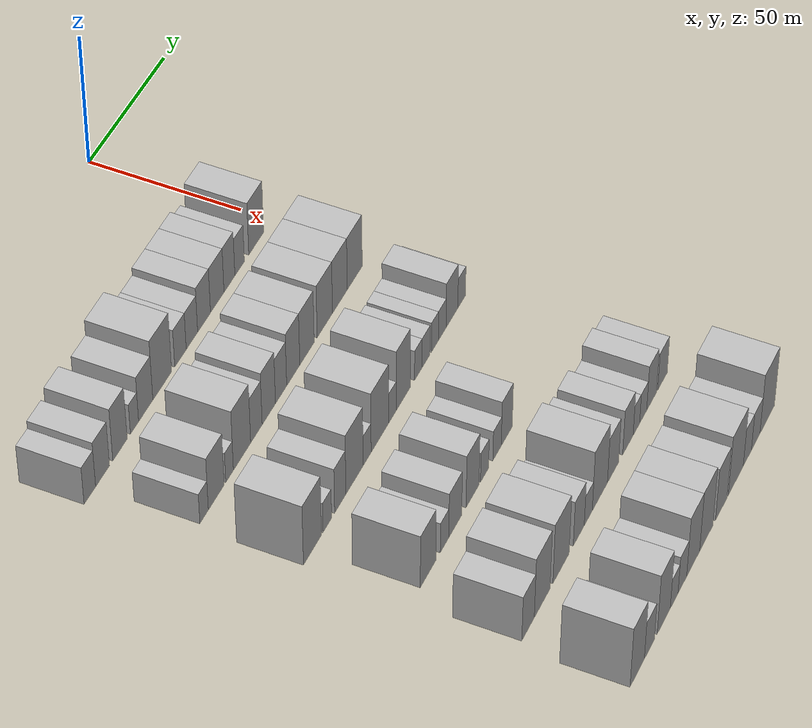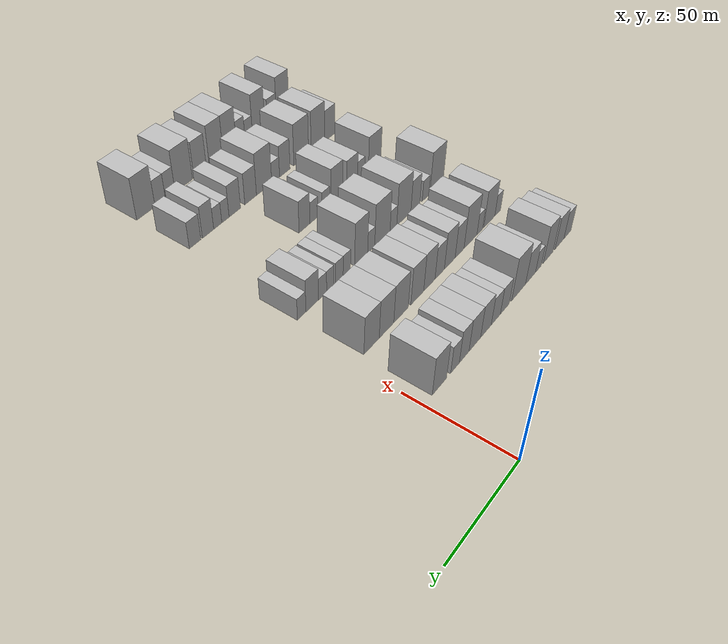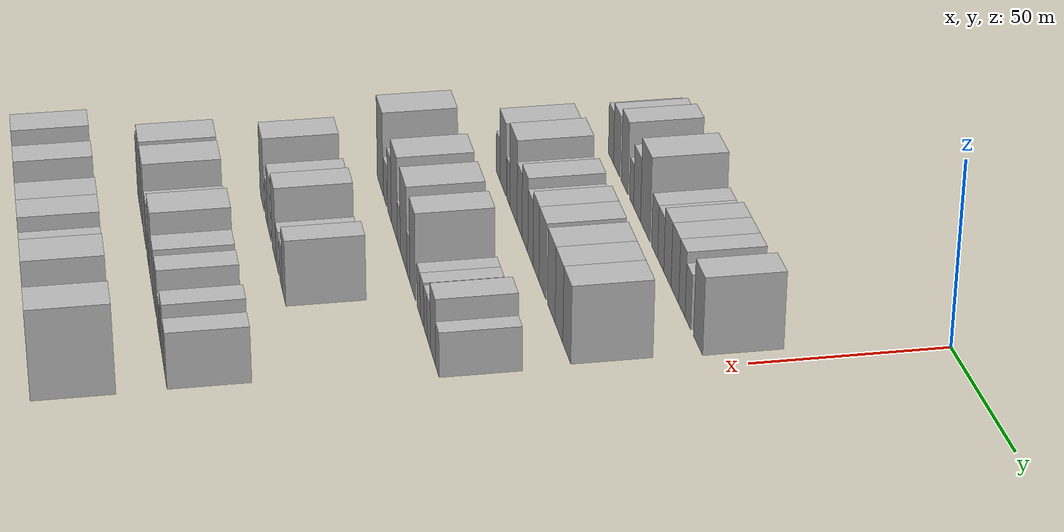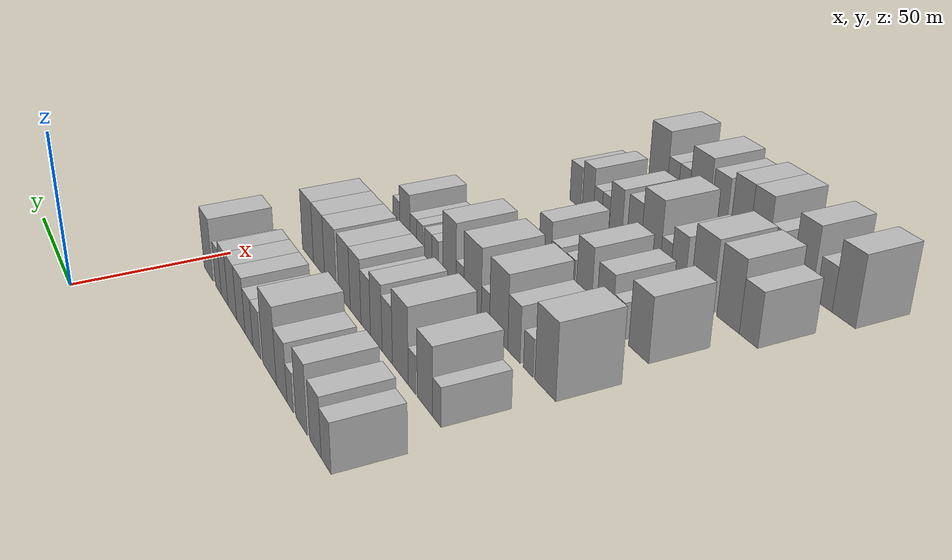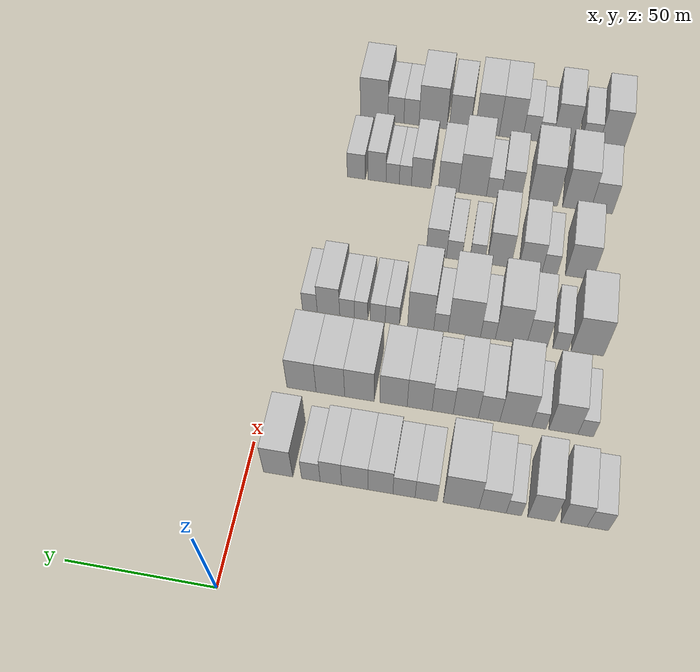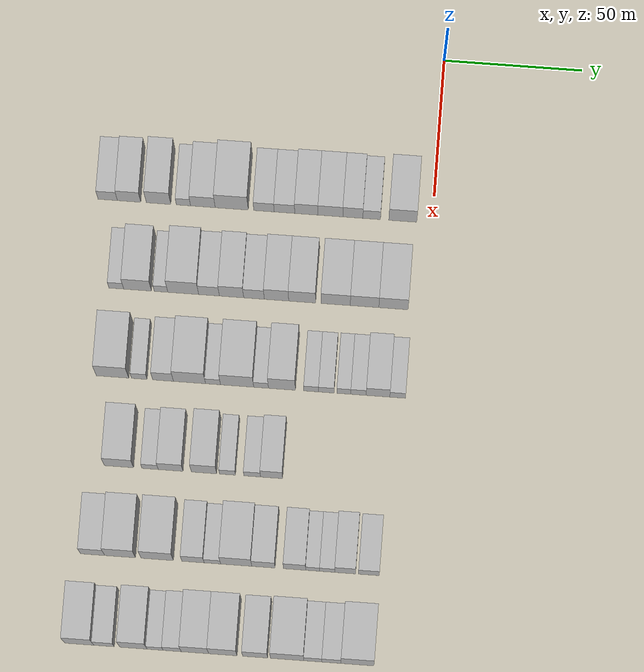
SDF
<sdf version="1.6">
 <world name="default">
  <model name="building_43">
   <static>1</static>
   <pose>50.0000 -117.0735 0 0.000000 0.000000 0.000000</pose>
   <link name="link">
    <pose>0 0 7.50 0 0 0</pose>
    <collision name="collision"><geometry><box><size>20.0000 6.9681 15.0000</size></box></geometry></collision>
    <visual name="visual">
     <cast_shadows>0</cast_shadows>
     <geometry><box><size>20.0000 6.9681 15.0000</size></box></geometry>
     <material>
      <script>
       <uri>model://HANNAS_wall/materials/scripts</uri>
       <uri>model://HANNAS_wall/materials/textures</uri>
       <name>vrc/HANNAS_wall</name>
      </script>
     </material>
    </visual>
   </link>
  </model>
  <model name="building_44">
   <static>1</static>
   <pose>50.0000 -109.3695 0 0.000000 0.000000 0.000000</pose>
   <link name="link">
    <pose>0 0 9.00 0 0 0</pose>
    <collision name="collision"><geometry><box><size>20.0000 8.4399 18.0000</size></box></geometry></collision>
    <visual name="visual">
     <cast_shadows>0</cast_shadows>
     <geometry><box><size>20.0000 8.4399 18.0000</size></box></geometry>
     <material>
      <script>
       <uri>model://HANNAS_wall/materials/scripts</uri>
       <uri>model://HANNAS_wall/materials/textures</uri>
       <name>vrc/HANNAS_wall</name>
      </script>
     </material>
    </visual>
   </link>
  </model>
  <model name="building_45">
   <static>1</static>
   <pose>50.0000 -98.7290 0 0.000000 0.000000 0.000000</pose>
   <link name="link">
    <pose>0 0 10.50 0 0 0</pose>
    <collision name="collision"><geometry><box><size>20.0000 8.8412 21.0000</size></box></geometry></collision>
    <visual name="visual">
     <cast_shadows>0</cast_shadows>
     <geometry><box><size>20.0000 8.8412 21.0000</size></box></geometry>
     <material>
      <script>
       <uri>model://HANNAS_wall/materials/scripts</uri>
       <uri>model://HANNAS_wall/materials/textures</uri>
       <name>vrc/HANNAS_wall</name>
      </script>
     </material>
    </visual>
   </link>
  </model>
  <model name="building_46">
   <static>1</static>
   <pose>50.0000 -89.7574 0 0.000000 0.000000 0.000000</pose>
   <link name="link">
    <pose>0 0 6.00 0 0 0</pose>
    <collision name="collision"><geometry><box><size>20.0000 5.1020 12.0000</size></box></geometry></collision>
    <visual name="visual">
     <cast_shadows>0</cast_shadows>
     <geometry><box><size>20.0000 5.1020 12.0000</size></box></geometry>
     <material>
      <script>
       <uri>model://HANNAS_wall/materials/scripts</uri>
       <uri>model://HANNAS_wall/materials/textures</uri>
       <name>vrc/HANNAS_wall</name>
      </script>
     </material>
    </visual>
   </link>
  </model>
  <model name="building_47">
   <static>1</static>
   <pose>50.0000 -82.7471 0 0.000000 0.000000 0.000000</pose>
   <link name="link">
    <pose>0 0 9.00 0 0 0</pose>
    <collision name="collision"><geometry><box><size>20.0000 8.9184 18.0000</size></box></geometry></collision>
    <visual name="visual">
     <cast_shadows>0</cast_shadows>
     <geometry><box><size>20.0000 8.9184 18.0000</size></box></geometry>
     <material>
      <script>
       <uri>model://HANNAS_wall/materials/scripts</uri>
       <uri>model://HANNAS_wall/materials/textures</uri>
       <name>vrc/HANNAS_wall</name>
      </script>
     </material>
    </visual>
   </link>
  </model>
  <model name="building_48">
   <static>1</static>
   <pose>50.0000 -72.3378 0 0.000000 0.000000 0.000000</pose>
   <link name="link">
    <pose>0 0 12.00 0 0 0</pose>
    <collision name="collision"><geometry><box><size>20.0000 11.9002 24.0000</size></box></geometry></collision>
    <visual name="visual">
     <cast_shadows>0</cast_shadows>
     <geometry><box><size>20.0000 11.9002 24.0000</size></box></geometry>
     <material>
      <script>
       <uri>model://HANNAS_wall/materials/scripts</uri>
       <uri>model://HANNAS_wall/materials/textures</uri>
       <name>vrc/HANNAS_wall</name>
      </script>
     </material>
    </visual>
   </link>
  </model>
  <model name="building_49">
   <static>1</static>
   <pose>50.0000 -60.7088 0 0.000000 0.000000 0.000000</pose>
   <link name="link">
    <pose>0 0 7.50 0 0 0</pose>
    <collision name="collision"><geometry><box><size>20.0000 7.3577 15.0000</size></box></geometry></collision>
    <visual name="visual">
     <cast_shadows>0</cast_shadows>
     <geometry><box><size>20.0000 7.3577 15.0000</size></box></geometry>
     <material>
      <script>
       <uri>model://HANNAS_wall/materials/scripts</uri>
       <uri>model://HANNAS_wall/materials/textures</uri>
       <name>vrc/HANNAS_wall</name>
      </script>
     </material>
    </visual>
   </link>
  </model>
  <model name="building_50">
   <static>1</static>
   <pose>50.0000 -53.3242 0 0.000000 0.000000 0.000000</pose>
   <link name="link">
    <pose>0 0 7.50 0 0 0</pose>
    <collision name="collision"><geometry><box><size>20.0000 7.4116 15.0000</size></box></geometry></collision>
    <visual name="visual">
     <cast_shadows>0</cast_shadows>
     <geometry><box><size>20.0000 7.4116 15.0000</size></box></geometry>
     <material>
      <script>
       <uri>model://HANNAS_wall/materials/scripts</uri>
       <uri>model://HANNAS_wall/materials/textures</uri>
       <name>vrc/HANNAS_wall</name>
      </script>
     </material>
    </visual>
   </link>
  </model>
  <model name="building_51">
   <static>1</static>
   <pose>50.0000 -45.4219 0 0.000000 0.000000 0.000000</pose>
   <link name="link">
    <pose>0 0 9.00 0 0 0</pose>
    <collision name="collision"><geometry><box><size>20.0000 8.3930 18.0000</size></box></geometry></collision>
    <visual name="visual">
     <cast_shadows>0</cast_shadows>
     <geometry><box><size>20.0000 8.3930 18.0000</size></box></geometry>
     <material>
      <script>
       <uri>model://HANNAS_wall/materials/scripts</uri>
       <uri>model://HANNAS_wall/materials/textures</uri>
       <name>vrc/HANNAS_wall</name>
      </script>
     </material>
    </visual>
   </link>
  </model>
  <model name="building_52">
   <static>1</static>
   <pose>50.0000 -36.7697 0 0.000000 0.000000 0.000000</pose>
   <link name="link">
    <pose>0 0 9.00 0 0 0</pose>
    <collision name="collision"><geometry><box><size>20.0000 8.9113 18.0000</size></box></geometry></collision>
    <visual name="visual">
     <cast_shadows>0</cast_shadows>
     <geometry><box><size>20.0000 8.9113 18.0000</size></box></geometry>
     <material>
      <script>
       <uri>model://HANNAS_wall/materials/scripts</uri>
       <uri>model://HANNAS_wall/materials/textures</uri>
       <name>vrc/HANNAS_wall</name>
      </script>
     </material>
    </visual>
   </link>
  </model>
  <model name="building_53">
   <static>1</static>
   <pose>50.0000 -28.6934 0 0.000000 0.000000 0.000000</pose>
   <link name="link">
    <pose>0 0 9.00 0 0 0</pose>
    <collision name="collision"><geometry><box><size>20.0000 7.2413 18.0000</size></box></geometry></collision>
    <visual name="visual">
     <cast_shadows>0</cast_shadows>
     <geometry><box><size>20.0000 7.2413 18.0000</size></box></geometry>
     <material>
      <script>
       <uri>model://HANNAS_wall/materials/scripts</uri>
       <uri>model://HANNAS_wall/materials/textures</uri>
       <name>vrc/HANNAS_wall</name>
      </script>
     </material>
    </visual>
   </link>
  </model>
  <model name="building_54">
   <static>1</static>
   <pose>50.0000 -21.9085 0 0.000000 0.000000 0.000000</pose>
   <link name="link">
    <pose>0 0 7.50 0 0 0</pose>
    <collision name="collision"><geometry><box><size>20.0000 6.3284 15.0000</size></box></geometry></collision>
    <visual name="visual">
     <cast_shadows>0</cast_shadows>
     <geometry><box><size>20.0000 6.3284 15.0000</size></box></geometry>
     <material>
      <script>
       <uri>model://HANNAS_wall/materials/scripts</uri>
       <uri>model://HANNAS_wall/materials/textures</uri>
       <name>vrc/HANNAS_wall</name>
      </script>
     </material>
    </visual>
   </link>
  </model>
  <model name="building_55">
   <static>1</static>
   <pose>50.0000 -10.7164 0 0.000000 0.000000 0.000000</pose>
   <link name="link">
    <pose>0 0 10.50 0 0 0</pose>
    <collision name="collision"><geometry><box><size>20.0000 10.0558 21.0000</size></box></geometry></collision>
    <visual name="visual">
     <cast_shadows>0</cast_shadows>
     <geometry><box><size>20.0000 10.0558 21.0000</size></box></geometry>
     <material>
      <script>
       <uri>model://HANNAS_wall/materials/scripts</uri>
       <uri>model://HANNAS_wall/materials/textures</uri>
       <name>vrc/HANNAS_wall</name>
      </script>
     </material>
    </visual>
   </link>
  </model>
  <model name="building_161">
   <static>1</static>
   <pose>82.0000 -111.3055 0 0.000000 0.000000 0.000000</pose>
   <link name="link">
    <pose>0 0 6.00 0 0 0</pose>
    <collision name="collision"><geometry><box><size>20.0000 5.3063 12.0000</size></box></geometry></collision>
    <visual name="visual">
     <cast_shadows>0</cast_shadows>
     <geometry><box><size>20.0000 5.3063 12.0000</size></box></geometry>
     <material>
      <script>
       <uri>model://HANNAS_wall/materials/scripts</uri>
       <uri>model://HANNAS_wall/materials/textures</uri>
       <name>vrc/HANNAS_wall</name>
      </script>
     </material>
    </visual>
   </link>
  </model>
  <model name="building_162">
   <static>1</static>
   <pose>82.0000 -103.6718 0 0.000000 0.000000 0.000000</pose>
   <link name="link">
    <pose>0 0 10.50 0 0 0</pose>
    <collision name="collision"><geometry><box><size>20.0000 9.9612 21.0000</size></box></geometry></collision>
    <visual name="visual">
     <cast_shadows>0</cast_shadows>
     <geometry><box><size>20.0000 9.9612 21.0000</size></box></geometry>
     <material>
      <script>
       <uri>model://HANNAS_wall/materials/scripts</uri>
       <uri>model://HANNAS_wall/materials/textures</uri>
       <name>vrc/HANNAS_wall</name>
      </script>
     </material>
    </visual>
   </link>
  </model>
  <model name="building_163">
   <static>1</static>
   <pose>82.0000 -95.2531 0 0.000000 0.000000 0.000000</pose>
   <link name="link">
    <pose>0 0 6.00 0 0 0</pose>
    <collision name="collision"><geometry><box><size>20.0000 4.8762 12.0000</size></box></geometry></collision>
    <visual name="visual">
     <cast_shadows>0</cast_shadows>
     <geometry><box><size>20.0000 4.8762 12.0000</size></box></geometry>
     <material>
      <script>
       <uri>model://HANNAS_wall/materials/scripts</uri>
       <uri>model://HANNAS_wall/materials/textures</uri>
       <name>vrc/HANNAS_wall</name>
      </script>
     </material>
    </visual>
   </link>
  </model>
  <model name="building_164">
   <static>1</static>
   <pose>82.0000 -87.2726 0 0.000000 0.000000 0.000000</pose>
   <link name="link">
    <pose>0 0 12.00 0 0 0</pose>
    <collision name="collision"><geometry><box><size>20.0000 11.0847 24.0000</size></box></geometry></collision>
    <visual name="visual">
     <cast_shadows>0</cast_shadows>
     <geometry><box><size>20.0000 11.0847 24.0000</size></box></geometry>
     <material>
      <script>
       <uri>model://HANNAS_wall/materials/scripts</uri>
       <uri>model://HANNAS_wall/materials/textures</uri>
       <name>vrc/HANNAS_wall</name>
      </script>
     </material>
    </visual>
   </link>
  </model>
  <model name="building_165">
   <static>1</static>
   <pose>82.0000 -78.0090 0 0.000000 0.000000 0.000000</pose>
   <link name="link">
    <pose>0 0 9.00 0 0 0</pose>
    <collision name="collision"><geometry><box><size>20.0000 7.4425 18.0000</size></box></geometry></collision>
    <visual name="visual">
     <cast_shadows>0</cast_shadows>
     <geometry><box><size>20.0000 7.4425 18.0000</size></box></geometry>
     <material>
      <script>
       <uri>model://HANNAS_wall/materials/scripts</uri>
       <uri>model://HANNAS_wall/materials/textures</uri>
       <name>vrc/HANNAS_wall</name>
      </script>
     </material>
    </visual>
   </link>
  </model>
  <model name="building_166">
   <static>1</static>
   <pose>82.0000 -69.9225 0 0.000000 0.000000 0.000000</pose>
   <link name="link">
    <pose>0 0 10.50 0 0 0</pose>
    <collision name="collision"><geometry><box><size>20.0000 8.7305 21.0000</size></box></geometry></collision>
    <visual name="visual">
     <cast_shadows>0</cast_shadows>
     <geometry><box><size>20.0000 8.7305 21.0000</size></box></geometry>
     <material>
      <script>
       <uri>model://HANNAS_wall/materials/scripts</uri>
       <uri>model://HANNAS_wall/materials/textures</uri>
       <name>vrc/HANNAS_wall</name>
      </script>
     </material>
    </visual>
   </link>
  </model>
  <model name="building_167">
   <static>1</static>
   <pose>82.0000 -61.8490 0 0.000000 0.000000 0.000000</pose>
   <link name="link">
    <pose>0 0 9.00 0 0 0</pose>
    <collision name="collision"><geometry><box><size>20.0000 7.4165 18.0000</size></box></geometry></collision>
    <visual name="visual">
     <cast_shadows>0</cast_shadows>
     <geometry><box><size>20.0000 7.4165 18.0000</size></box></geometry>
     <material>
      <script>
       <uri>model://HANNAS_wall/materials/scripts</uri>
       <uri>model://HANNAS_wall/materials/textures</uri>
       <name>vrc/HANNAS_wall</name>
      </script>
     </material>
    </visual>
   </link>
  </model>
  <model name="building_168">
   <static>1</static>
   <pose>82.0000 -53.7683 0 0.000000 0.000000 0.000000</pose>
   <link name="link">
    <pose>0 0 10.50 0 0 0</pose>
    <collision name="collision"><geometry><box><size>20.0000 8.7450 21.0000</size></box></geometry></collision>
    <visual name="visual">
     <cast_shadows>0</cast_shadows>
     <geometry><box><size>20.0000 8.7450 21.0000</size></box></geometry>
     <material>
      <script>
       <uri>model://HANNAS_wall/materials/scripts</uri>
       <uri>model://HANNAS_wall/materials/textures</uri>
       <name>vrc/HANNAS_wall</name>
      </script>
     </material>
    </visual>
   </link>
  </model>
  <model name="building_169">
   <static>1</static>
   <pose>82.0000 -44.5559 0 0.000000 0.000000 0.000000</pose>
   <link name="link">
    <pose>0 0 10.50 0 0 0</pose>
    <collision name="collision"><geometry><box><size>20.0000 9.6798 21.0000</size></box></geometry></collision>
    <visual name="visual">
     <cast_shadows>0</cast_shadows>
     <geometry><box><size>20.0000 9.6798 21.0000</size></box></geometry>
     <material>
      <script>
       <uri>model://HANNAS_wall/materials/scripts</uri>
       <uri>model://HANNAS_wall/materials/textures</uri>
       <name>vrc/HANNAS_wall</name>
      </script>
     </material>
    </visual>
   </link>
  </model>
  <model name="building_170">
   <static>1</static>
   <pose>82.0000 -32.4820 0 0.000000 0.000000 0.000000</pose>
   <link name="link">
    <pose>0 0 10.50 0 0 0</pose>
    <collision name="collision"><geometry><box><size>20.0000 10.4681 21.0000</size></box></geometry></collision>
    <visual name="visual">
     <cast_shadows>0</cast_shadows>
     <geometry><box><size>20.0000 10.4681 21.0000</size></box></geometry>
     <material>
      <script>
       <uri>model://HANNAS_wall/materials/scripts</uri>
       <uri>model://HANNAS_wall/materials/textures</uri>
       <name>vrc/HANNAS_wall</name>
      </script>
     </material>
    </visual>
   </link>
  </model>
  <model name="building_171">
   <static>1</static>
   <pose>82.0000 -22.1354 0 0.000000 0.000000 0.000000</pose>
   <link name="link">
    <pose>0 0 10.50 0 0 0</pose>
    <collision name="collision"><geometry><box><size>20.0000 10.2252 21.0000</size></box></geometry></collision>
    <visual name="visual">
     <cast_shadows>0</cast_shadows>
     <geometry><box><size>20.0000 10.2252 21.0000</size></box></geometry>
     <material>
      <script>
       <uri>model://HANNAS_wall/materials/scripts</uri>
       <uri>model://HANNAS_wall/materials/textures</uri>
       <name>vrc/HANNAS_wall</name>
      </script>
     </material>
    </visual>
   </link>
  </model>
  <model name="building_172">
   <static>1</static>
   <pose>82.0000 -11.7953 0 0.000000 0.000000 0.000000</pose>
   <link name="link">
    <pose>0 0 10.50 0 0 0</pose>
    <collision name="collision"><geometry><box><size>20.0000 10.4549 21.0000</size></box></geometry></collision>
    <visual name="visual">
     <cast_shadows>0</cast_shadows>
     <geometry><box><size>20.0000 10.4549 21.0000</size></box></geometry>
     <material>
      <script>
       <uri>model://HANNAS_wall/materials/scripts</uri>
       <uri>model://HANNAS_wall/materials/textures</uri>
       <name>vrc/HANNAS_wall</name>
      </script>
     </material>
    </visual>
   </link>
  </model>
  <model name="building_286">
   <static>1</static>
   <pose>114.0000 -110.0456 0 0.000000 0.000000 0.000000</pose>
   <link name="link">
    <pose>0 0 12.00 0 0 0</pose>
    <collision name="collision"><geometry><box><size>20.0000 11.6026 24.0000</size></box></geometry></collision>
    <visual name="visual">
     <cast_shadows>0</cast_shadows>
     <geometry><box><size>20.0000 11.6026 24.0000</size></box></geometry>
     <material>
      <script>
       <uri>model://HANNAS_wall/materials/scripts</uri>
       <uri>model://HANNAS_wall/materials/textures</uri>
       <name>vrc/HANNAS_wall</name>
      </script>
     </material>
    </visual>
   </link>
  </model>
  <model name="building_287">
   <static>1</static>
   <pose>114.0000 -100.4470 0 0.000000 0.000000 0.000000</pose>
   <link name="link">
    <pose>0 0 6.00 0 0 0</pose>
    <collision name="collision"><geometry><box><size>20.0000 5.5946 12.0000</size></box></geometry></collision>
    <visual name="visual">
     <cast_shadows>0</cast_shadows>
     <geometry><box><size>20.0000 5.5946 12.0000</size></box></geometry>
     <material>
      <script>
       <uri>model://HANNAS_wall/materials/scripts</uri>
       <uri>model://HANNAS_wall/materials/textures</uri>
       <name>vrc/HANNAS_wall</name>
      </script>
     </material>
    </visual>
   </link>
  </model>
  <model name="building_288">
   <static>1</static>
   <pose>114.0000 -91.9320 0 0.000000 0.000000 0.000000</pose>
   <link name="link">
    <pose>0 0 9.00 0 0 0</pose>
    <collision name="collision"><geometry><box><size>20.0000 7.4354 18.0000</size></box></geometry></collision>
    <visual name="visual">
     <cast_shadows>0</cast_shadows>
     <geometry><box><size>20.0000 7.4354 18.0000</size></box></geometry>
     <material>
      <script>
       <uri>model://HANNAS_wall/materials/scripts</uri>
       <uri>model://HANNAS_wall/materials/textures</uri>
       <name>vrc/HANNAS_wall</name>
      </script>
     </material>
    </visual>
   </link>
  </model>
  <model name="building_289">
   <static>1</static>
   <pose>114.0000 -82.4831 0 0.000000 0.000000 0.000000</pose>
   <link name="link">
    <pose>0 0 12.00 0 0 0</pose>
    <collision name="collision"><geometry><box><size>20.0000 11.4625 24.0000</size></box></geometry></collision>
    <visual name="visual">
     <cast_shadows>0</cast_shadows>
     <geometry><box><size>20.0000 11.4625 24.0000</size></box></geometry>
     <material>
      <script>
       <uri>model://HANNAS_wall/materials/scripts</uri>
       <uri>model://HANNAS_wall/materials/textures</uri>
       <name>vrc/HANNAS_wall</name>
      </script>
     </material>
    </visual>
   </link>
  </model>
  <model name="building_290">
   <static>1</static>
   <pose>114.0000 -74.0629 0 0.000000 0.000000 0.000000</pose>
   <link name="link">
    <pose>0 0 6.00 0 0 0</pose>
    <collision name="collision"><geometry><box><size>20.0000 5.3780 12.0000</size></box></geometry></collision>
    <visual name="visual">
     <cast_shadows>0</cast_shadows>
     <geometry><box><size>20.0000 5.3780 12.0000</size></box></geometry>
     <material>
      <script>
       <uri>model://HANNAS_wall/materials/scripts</uri>
       <uri>model://HANNAS_wall/materials/textures</uri>
       <name>vrc/HANNAS_wall</name>
      </script>
     </material>
    </visual>
   </link>
  </model>
  <model name="building_291">
   <static>1</static>
   <pose>114.0000 -65.4379 0 0.000000 0.000000 0.000000</pose>
   <link name="link">
    <pose>0 0 12.00 0 0 0</pose>
    <collision name="collision"><geometry><box><size>20.0000 11.8720 24.0000</size></box></geometry></collision>
    <visual name="visual">
     <cast_shadows>0</cast_shadows>
     <geometry><box><size>20.0000 11.8720 24.0000</size></box></geometry>
     <material>
      <script>
       <uri>model://HANNAS_wall/materials/scripts</uri>
       <uri>model://HANNAS_wall/materials/textures</uri>
       <name>vrc/HANNAS_wall</name>
      </script>
     </material>
    </visual>
   </link>
  </model>
  <model name="building_292">
   <static>1</static>
   <pose>114.0000 -56.8639 0 0.000000 0.000000 0.000000</pose>
   <link name="link">
    <pose>0 0 6.00 0 0 0</pose>
    <collision name="collision"><geometry><box><size>20.0000 5.2761 12.0000</size></box></geometry></collision>
    <visual name="visual">
     <cast_shadows>0</cast_shadows>
     <geometry><box><size>20.0000 5.2761 12.0000</size></box></geometry>
     <material>
      <script>
       <uri>model://HANNAS_wall/materials/scripts</uri>
       <uri>model://HANNAS_wall/materials/textures</uri>
       <name>vrc/HANNAS_wall</name>
      </script>
     </material>
    </visual>
   </link>
  </model>
  <model name="building_293">
   <static>1</static>
   <pose>114.0000 -49.3953 0 0.000000 0.000000 0.000000</pose>
   <link name="link">
    <pose>0 0 12.00 0 0 0</pose>
    <collision name="collision"><geometry><box><size>20.0000 9.6611 24.0000</size></box></geometry></collision>
    <visual name="visual">
     <cast_shadows>0</cast_shadows>
     <geometry><box><size>20.0000 9.6611 24.0000</size></box></geometry>
     <material>
      <script>
       <uri>model://HANNAS_wall/materials/scripts</uri>
       <uri>model://HANNAS_wall/materials/textures</uri>
       <name>vrc/HANNAS_wall</name>
      </script>
     </material>
    </visual>
   </link>
  </model>
  <model name="building_294">
   <static>1</static>
   <pose>114.0000 -38.9186 0 0.000000 0.000000 0.000000</pose>
   <link name="link">
    <pose>0 0 6.00 0 0 0</pose>
    <collision name="collision"><geometry><box><size>20.0000 5.2922 12.0000</size></box></geometry></collision>
    <visual name="visual">
     <cast_shadows>0</cast_shadows>
     <geometry><box><size>20.0000 5.2922 12.0000</size></box></geometry>
     <material>
      <script>
       <uri>model://HANNAS_wall/materials/scripts</uri>
       <uri>model://HANNAS_wall/materials/textures</uri>
       <name>vrc/HANNAS_wall</name>
      </script>
     </material>
    </visual>
   </link>
  </model>
  <model name="building_295">
   <static>1</static>
   <pose>114.0000 -33.5045 0 0.000000 0.000000 0.000000</pose>
   <link name="link">
    <pose>0 0 6.00 0 0 0</pose>
    <collision name="collision"><geometry><box><size>20.0000 5.5362 12.0000</size></box></geometry></collision>
    <visual name="visual">
     <cast_shadows>0</cast_shadows>
     <geometry><box><size>20.0000 5.5362 12.0000</size></box></geometry>
     <material>
      <script>
       <uri>model://HANNAS_wall/materials/scripts</uri>
       <uri>model://HANNAS_wall/materials/textures</uri>
       <name>vrc/HANNAS_wall</name>
      </script>
     </material>
    </visual>
   </link>
  </model>
  <model name="building_296">
   <static>1</static>
   <pose>114.0000 -27.2540 0 0.000000 0.000000 0.000000</pose>
   <link name="link">
    <pose>0 0 6.00 0 0 0</pose>
    <collision name="collision"><geometry><box><size>20.0000 4.9648 12.0000</size></box></geometry></collision>
    <visual name="visual">
     <cast_shadows>0</cast_shadows>
     <geometry><box><size>20.0000 4.9648 12.0000</size></box></geometry>
     <material>
      <script>
       <uri>model://HANNAS_wall/materials/scripts</uri>
       <uri>model://HANNAS_wall/materials/textures</uri>
       <name>vrc/HANNAS_wall</name>
      </script>
     </material>
    </visual>
   </link>
  </model>
  <model name="building_297">
   <static>1</static>
   <pose>114.0000 -22.0189 0 0.000000 0.000000 0.000000</pose>
   <link name="link">
    <pose>0 0 6.00 0 0 0</pose>
    <collision name="collision"><geometry><box><size>20.0000 5.5054 12.0000</size></box></geometry></collision>
    <visual name="visual">
     <cast_shadows>0</cast_shadows>
     <geometry><box><size>20.0000 5.5054 12.0000</size></box></geometry>
     <material>
      <script>
       <uri>model://HANNAS_wall/materials/scripts</uri>
       <uri>model://HANNAS_wall/materials/textures</uri>
       <name>vrc/HANNAS_wall</name>
      </script>
     </material>
    </visual>
   </link>
  </model>
  <model name="building_298">
   <static>1</static>
   <pose>114.0000 -15.0422 0 0.000000 0.000000 0.000000</pose>
   <link name="link">
    <pose>0 0 9.00 0 0 0</pose>
    <collision name="collision"><geometry><box><size>20.0000 8.4481 18.0000</size></box></geometry></collision>
    <visual name="visual">
     <cast_shadows>0</cast_shadows>
     <geometry><box><size>20.0000 8.4481 18.0000</size></box></geometry>
     <material>
      <script>
       <uri>model://HANNAS_wall/materials/scripts</uri>
       <uri>model://HANNAS_wall/materials/textures</uri>
       <name>vrc/HANNAS_wall</name>
      </script>
     </material>
    </visual>
   </link>
  </model>
  <model name="building_299">
   <static>1</static>
   <pose>114.0000 -8.0324 0 0.000000 0.000000 0.000000</pose>
   <link name="link">
    <pose>0 0 6.00 0 0 0</pose>
    <collision name="collision"><geometry><box><size>20.0000 5.5715 12.0000</size></box></geometry></collision>
    <visual name="visual">
     <cast_shadows>0</cast_shadows>
     <geometry><box><size>20.0000 5.5715 12.0000</size></box></geometry>
     <material>
      <script>
       <uri>model://HANNAS_wall/materials/scripts</uri>
       <uri>model://HANNAS_wall/materials/textures</uri>
       <name>vrc/HANNAS_wall</name>
      </script>
     </material>
    </visual>
   </link>
  </model>
  <model name="building_397">
   <static>1</static>
   <pose>146.0000 -105.1001 0 0.000000 0.000000 0.000000</pose>
   <link name="link">
    <pose>0 0 10.50 0 0 0</pose>
    <collision name="collision"><geometry><box><size>20.0000 10.4213 21.0000</size></box></geometry></collision>
    <visual name="visual">
     <cast_shadows>0</cast_shadows>
     <geometry><box><size>20.0000 10.4213 21.0000</size></box></geometry>
     <material>
      <script>
       <uri>model://HANNAS_wall/materials/scripts</uri>
       <uri>model://HANNAS_wall/materials/textures</uri>
       <name>vrc/HANNAS_wall</name>
      </script>
     </material>
    </visual>
   </link>
  </model>
  <model name="building_398">
   <static>1</static>
   <pose>146.0000 -93.9883 0 0.000000 0.000000 0.000000</pose>
   <link name="link">
    <pose>0 0 6.00 0 0 0</pose>
    <collision name="collision"><geometry><box><size>20.0000 5.8024 12.0000</size></box></geometry></collision>
    <visual name="visual">
     <cast_shadows>0</cast_shadows>
     <geometry><box><size>20.0000 5.8024 12.0000</size></box></geometry>
     <material>
      <script>
       <uri>model://HANNAS_wall/materials/scripts</uri>
       <uri>model://HANNAS_wall/materials/textures</uri>
       <name>vrc/HANNAS_wall</name>
      </script>
     </material>
    </visual>
   </link>
  </model>
  <model name="building_399">
   <static>1</static>
   <pose>146.0000 -86.6648 0 0.000000 0.000000 0.000000</pose>
   <link name="link">
    <pose>0 0 9.00 0 0 0</pose>
    <collision name="collision"><geometry><box><size>20.0000 8.8445 18.0000</size></box></geometry></collision>
    <visual name="visual">
     <cast_shadows>0</cast_shadows>
     <geometry><box><size>20.0000 8.8445 18.0000</size></box></geometry>
     <material>
      <script>
       <uri>model://HANNAS_wall/materials/scripts</uri>
       <uri>model://HANNAS_wall/materials/textures</uri>
       <name>vrc/HANNAS_wall</name>
      </script>
     </material>
    </visual>
   </link>
  </model>
  <model name="building_400">
   <static>1</static>
   <pose>146.0000 -74.7266 0 0.000000 0.000000 0.000000</pose>
   <link name="link">
    <pose>0 0 10.50 0 0 0</pose>
    <collision name="collision"><geometry><box><size>20.0000 9.0319 21.0000</size></box></geometry></collision>
    <visual name="visual">
     <cast_shadows>0</cast_shadows>
     <geometry><box><size>20.0000 9.0319 21.0000</size></box></geometry>
     <material>
      <script>
       <uri>model://HANNAS_wall/materials/scripts</uri>
       <uri>model://HANNAS_wall/materials/textures</uri>
       <name>vrc/HANNAS_wall</name>
      </script>
     </material>
    </visual>
   </link>
  </model>
  <model name="building_401">
   <static>1</static>
   <pose>146.0000 -66.3639 0 0.000000 0.000000 0.000000</pose>
   <link name="link">
    <pose>0 0 6.00 0 0 0</pose>
    <collision name="collision"><geometry><box><size>20.0000 5.6936 12.0000</size></box></geometry></collision>
    <visual name="visual">
     <cast_shadows>0</cast_shadows>
     <geometry><box><size>20.0000 5.6936 12.0000</size></box></geometry>
     <material>
      <script>
       <uri>model://HANNAS_wall/materials/scripts</uri>
       <uri>model://HANNAS_wall/materials/textures</uri>
       <name>vrc/HANNAS_wall</name>
      </script>
     </material>
    </visual>
   </link>
  </model>
  <model name="building_402">
   <static>1</static>
   <pose>146.0000 -57.5407 0 0.000000 0.000000 0.000000</pose>
   <link name="link">
    <pose>0 0 6.00 0 0 0</pose>
    <collision name="collision"><geometry><box><size>20.0000 5.9528 12.0000</size></box></geometry></collision>
    <visual name="visual">
     <cast_shadows>0</cast_shadows>
     <geometry><box><size>20.0000 5.9528 12.0000</size></box></geometry>
     <material>
      <script>
       <uri>model://HANNAS_wall/materials/scripts</uri>
       <uri>model://HANNAS_wall/materials/textures</uri>
       <name>vrc/HANNAS_wall</name>
      </script>
     </material>
    </visual>
   </link>
  </model>
  <model name="building_403">
   <static>1</static>
   <pose>146.0000 -50.6400 0 0.000000 0.000000 0.000000</pose>
   <link name="link">
    <pose>0 0 9.00 0 0 0</pose>
    <collision name="collision"><geometry><box><size>20.0000 7.8486 18.0000</size></box></geometry></collision>
    <visual name="visual">
     <cast_shadows>0</cast_shadows>
     <geometry><box><size>20.0000 7.8486 18.0000</size></box></geometry>
     <material>
      <script>
       <uri>model://HANNAS_wall/materials/scripts</uri>
       <uri>model://HANNAS_wall/materials/textures</uri>
       <name>vrc/HANNAS_wall</name>
      </script>
     </material>
    </visual>
   </link>
  </model>
  <model name="building_511">
   <static>1</static>
   <pose>178.0000 -111.8550 0 0.000000 0.000000 0.000000</pose>
   <link name="link">
    <pose>0 0 9.00 0 0 0</pose>
    <collision name="collision"><geometry><box><size>20.0000 8.6389 18.0000</size></box></geometry></collision>
    <visual name="visual">
     <cast_shadows>0</cast_shadows>
     <geometry><box><size>20.0000 8.6389 18.0000</size></box></geometry>
     <material>
      <script>
       <uri>model://HANNAS_wall/materials/scripts</uri>
       <uri>model://HANNAS_wall/materials/textures</uri>
       <name>vrc/HANNAS_wall</name>
      </script>
     </material>
    </visual>
   </link>
  </model>
  <model name="building_512">
   <static>1</static>
   <pose>178.0000 -102.0529 0 0.000000 0.000000 0.000000</pose>
   <link name="link">
    <pose>0 0 12.00 0 0 0</pose>
    <collision name="collision"><geometry><box><size>20.0000 10.9653 24.0000</size></box></geometry></collision>
    <visual name="visual">
     <cast_shadows>0</cast_shadows>
     <geometry><box><size>20.0000 10.9653 24.0000</size></box></geometry>
     <material>
      <script>
       <uri>model://HANNAS_wall/materials/scripts</uri>
       <uri>model://HANNAS_wall/materials/textures</uri>
       <name>vrc/HANNAS_wall</name>
      </script>
     </material>
    </visual>
   </link>
  </model>
  <model name="building_513">
   <static>1</static>
   <pose>178.0000 -88.8270 0 0.000000 0.000000 0.000000</pose>
   <link name="link">
    <pose>0 0 12.00 0 0 0</pose>
    <collision name="collision"><geometry><box><size>20.0000 11.4864 24.0000</size></box></geometry></collision>
    <visual name="visual">
     <cast_shadows>0</cast_shadows>
     <geometry><box><size>20.0000 11.4864 24.0000</size></box></geometry>
     <material>
      <script>
       <uri>model://HANNAS_wall/materials/scripts</uri>
       <uri>model://HANNAS_wall/materials/textures</uri>
       <name>vrc/HANNAS_wall</name>
      </script>
     </material>
    </visual>
   </link>
  </model>
  <model name="building_514">
   <static>1</static>
   <pose>178.0000 -76.1309 0 0.000000 0.000000 0.000000</pose>
   <link name="link">
    <pose>0 0 9.00 0 0 0</pose>
    <collision name="collision"><geometry><box><size>20.0000 7.9059 18.0000</size></box></geometry></collision>
    <visual name="visual">
     <cast_shadows>0</cast_shadows>
     <geometry><box><size>20.0000 7.9059 18.0000</size></box></geometry>
     <material>
      <script>
       <uri>model://HANNAS_wall/materials/scripts</uri>
       <uri>model://HANNAS_wall/materials/textures</uri>
       <name>vrc/HANNAS_wall</name>
      </script>
     </material>
    </visual>
   </link>
  </model>
  <model name="building_515">
   <static>1</static>
   <pose>178.0000 -69.2575 0 0.000000 0.000000 0.000000</pose>
   <link name="link">
    <pose>0 0 6.00 0 0 0</pose>
    <collision name="collision"><geometry><box><size>20.0000 5.8407 12.0000</size></box></geometry></collision>
    <visual name="visual">
     <cast_shadows>0</cast_shadows>
     <geometry><box><size>20.0000 5.8407 12.0000</size></box></geometry>
     <material>
      <script>
       <uri>model://HANNAS_wall/materials/scripts</uri>
       <uri>model://HANNAS_wall/materials/textures</uri>
       <name>vrc/HANNAS_wall</name>
      </script>
     </material>
    </visual>
   </link>
  </model>
  <model name="building_516">
   <static>1</static>
   <pose>178.0000 -60.7865 0 0.000000 0.000000 0.000000</pose>
   <link name="link">
    <pose>0 0 12.00 0 0 0</pose>
    <collision name="collision"><geometry><box><size>20.0000 11.1014 24.0000</size></box></geometry></collision>
    <visual name="visual">
     <cast_shadows>0</cast_shadows>
     <geometry><box><size>20.0000 11.1014 24.0000</size></box></geometry>
     <material>
      <script>
       <uri>model://HANNAS_wall/materials/scripts</uri>
       <uri>model://HANNAS_wall/materials/textures</uri>
       <name>vrc/HANNAS_wall</name>
      </script>
     </material>
    </visual>
   </link>
  </model>
  <model name="building_517">
   <static>1</static>
   <pose>178.0000 -51.1001 0 0.000000 0.000000 0.000000</pose>
   <link name="link">
    <pose>0 0 9.00 0 0 0</pose>
    <collision name="collision"><geometry><box><size>20.0000 8.2713 18.0000</size></box></geometry></collision>
    <visual name="visual">
     <cast_shadows>0</cast_shadows>
     <geometry><box><size>20.0000 8.2713 18.0000</size></box></geometry>
     <material>
      <script>
       <uri>model://HANNAS_wall/materials/scripts</uri>
       <uri>model://HANNAS_wall/materials/textures</uri>
       <name>vrc/HANNAS_wall</name>
      </script>
     </material>
    </visual>
   </link>
  </model>
  <model name="building_518">
   <static>1</static>
   <pose>178.0000 -40.0187 0 0.000000 0.000000 0.000000</pose>
   <link name="link">
    <pose>0 0 9.00 0 0 0</pose>
    <collision name="collision"><geometry><box><size>20.0000 7.8916 18.0000</size></box></geometry></collision>
    <visual name="visual">
     <cast_shadows>0</cast_shadows>
     <geometry><box><size>20.0000 7.8916 18.0000</size></box></geometry>
     <material>
      <script>
       <uri>model://HANNAS_wall/materials/scripts</uri>
       <uri>model://HANNAS_wall/materials/textures</uri>
       <name>vrc/HANNAS_wall</name>
      </script>
     </material>
    </visual>
   </link>
  </model>
  <model name="building_519">
   <static>1</static>
   <pose>178.0000 -33.6226 0 0.000000 0.000000 0.000000</pose>
   <link name="link">
    <pose>0 0 6.00 0 0 0</pose>
    <collision name="collision"><geometry><box><size>20.0000 4.9007 12.0000</size></box></geometry></collision>
    <visual name="visual">
     <cast_shadows>0</cast_shadows>
     <geometry><box><size>20.0000 4.9007 12.0000</size></box></geometry>
     <material>
      <script>
       <uri>model://HANNAS_wall/materials/scripts</uri>
       <uri>model://HANNAS_wall/materials/textures</uri>
       <name>vrc/HANNAS_wall</name>
      </script>
     </material>
    </visual>
   </link>
  </model>
  <model name="building_520">
   <static>1</static>
   <pose>178.0000 -28.4773 0 0.000000 0.000000 0.000000</pose>
   <link name="link">
    <pose>0 0 6.00 0 0 0</pose>
    <collision name="collision"><geometry><box><size>20.0000 5.3900 12.0000</size></box></geometry></collision>
    <visual name="visual">
     <cast_shadows>0</cast_shadows>
     <geometry><box><size>20.0000 5.3900 12.0000</size></box></geometry>
     <material>
      <script>
       <uri>model://HANNAS_wall/materials/scripts</uri>
       <uri>model://HANNAS_wall/materials/textures</uri>
       <name>vrc/HANNAS_wall</name>
      </script>
     </material>
    </visual>
   </link>
  </model>
  <model name="building_521">
   <static>1</static>
   <pose>178.0000 -22.0773 0 0.000000 0.000000 0.000000</pose>
   <link name="link">
    <pose>0 0 9.00 0 0 0</pose>
    <collision name="collision"><geometry><box><size>20.0000 7.4100 18.0000</size></box></geometry></collision>
    <visual name="visual">
     <cast_shadows>0</cast_shadows>
     <geometry><box><size>20.0000 7.4100 18.0000</size></box></geometry>
     <material>
      <script>
       <uri>model://HANNAS_wall/materials/scripts</uri>
       <uri>model://HANNAS_wall/materials/textures</uri>
       <name>vrc/HANNAS_wall</name>
      </script>
     </material>
    </visual>
   </link>
  </model>
  <model name="building_522">
   <static>1</static>
   <pose>178.0000 -13.6814 0 0.000000 0.000000 0.000000</pose>
   <link name="link">
    <pose>0 0 7.50 0 0 0</pose>
    <collision name="collision"><geometry><box><size>20.0000 7.3818 15.0000</size></box></geometry></collision>
    <visual name="visual">
     <cast_shadows>0</cast_shadows>
     <geometry><box><size>20.0000 7.3818 15.0000</size></box></geometry>
     <material>
      <script>
       <uri>model://HANNAS_wall/materials/scripts</uri>
       <uri>model://HANNAS_wall/materials/textures</uri>
       <name>vrc/HANNAS_wall</name>
      </script>
     </material>
    </visual>
   </link>
  </model>
  <model name="building_631">
   <static>1</static>
   <pose>210.0000 -113.8804 0 0.000000 0.000000 0.000000</pose>
   <link name="link">
    <pose>0 0 12.00 0 0 0</pose>
    <collision name="collision"><geometry><box><size>20.0000 10.2052 24.0000</size></box></geometry></collision>
    <visual name="visual">
     <cast_shadows>0</cast_shadows>
     <geometry><box><size>20.0000 10.2052 24.0000</size></box></geometry>
     <material>
      <script>
       <uri>model://HANNAS_wall/materials/scripts</uri>
       <uri>model://HANNAS_wall/materials/textures</uri>
       <name>vrc/HANNAS_wall</name>
      </script>
     </material>
    </visual>
   </link>
  </model>
  <model name="building_632">
   <static>1</static>
   <pose>210.0000 -105.1401 0 0.000000 0.000000 0.000000</pose>
   <link name="link">
    <pose>0 0 7.50 0 0 0</pose>
    <collision name="collision"><geometry><box><size>20.0000 7.2753 15.0000</size></box></geometry></collision>
    <visual name="visual">
     <cast_shadows>0</cast_shadows>
     <geometry><box><size>20.0000 7.2753 15.0000</size></box></geometry>
     <material>
      <script>
       <uri>model://HANNAS_wall/materials/scripts</uri>
       <uri>model://HANNAS_wall/materials/textures</uri>
       <name>vrc/HANNAS_wall</name>
      </script>
     </material>
    </visual>
   </link>
  </model>
  <model name="building_633">
   <static>1</static>
   <pose>210.0000 -94.6995 0 0.000000 0.000000 0.000000</pose>
   <link name="link">
    <pose>0 0 12.00 0 0 0</pose>
    <collision name="collision"><geometry><box><size>20.0000 9.6059 24.0000</size></box></geometry></collision>
    <visual name="visual">
     <cast_shadows>0</cast_shadows>
     <geometry><box><size>20.0000 9.6059 24.0000</size></box></geometry>
     <material>
      <script>
       <uri>model://HANNAS_wall/materials/scripts</uri>
       <uri>model://HANNAS_wall/materials/textures</uri>
       <name>vrc/HANNAS_wall</name>
      </script>
     </material>
    </visual>
   </link>
  </model>
  <model name="building_634">
   <static>1</static>
   <pose>210.0000 -87.0450 0 0.000000 0.000000 0.000000</pose>
   <link name="link">
    <pose>0 0 6.00 0 0 0</pose>
    <collision name="collision"><geometry><box><size>20.0000 5.7030 12.0000</size></box></geometry></collision>
    <visual name="visual">
     <cast_shadows>0</cast_shadows>
     <geometry><box><size>20.0000 5.7030 12.0000</size></box></geometry>
     <material>
      <script>
       <uri>model://HANNAS_wall/materials/scripts</uri>
       <uri>model://HANNAS_wall/materials/textures</uri>
       <name>vrc/HANNAS_wall</name>
      </script>
     </material>
    </visual>
   </link>
  </model>
  <model name="building_635">
   <static>1</static>
   <pose>210.0000 -80.9767 0 0.000000 0.000000 0.000000</pose>
   <link name="link">
    <pose>0 0 7.50 0 0 0</pose>
    <collision name="collision"><geometry><box><size>20.0000 6.4337 15.0000</size></box></geometry></collision>
    <visual name="visual">
     <cast_shadows>0</cast_shadows>
     <geometry><box><size>20.0000 6.4337 15.0000</size></box></geometry>
     <material>
      <script>
       <uri>model://HANNAS_wall/materials/scripts</uri>
       <uri>model://HANNAS_wall/materials/textures</uri>
       <name>vrc/HANNAS_wall</name>
      </script>
     </material>
    </visual>
   </link>
  </model>
  <model name="building_636">
   <static>1</static>
   <pose>210.0000 -72.8922 0 0.000000 0.000000 0.000000</pose>
   <link name="link">
    <pose>0 0 12.00 0 0 0</pose>
    <collision name="collision"><geometry><box><size>20.0000 9.7353 24.0000</size></box></geometry></collision>
    <visual name="visual">
     <cast_shadows>0</cast_shadows>
     <geometry><box><size>20.0000 9.7353 24.0000</size></box></geometry>
     <material>
      <script>
       <uri>model://HANNAS_wall/materials/scripts</uri>
       <uri>model://HANNAS_wall/materials/textures</uri>
       <name>vrc/HANNAS_wall</name>
      </script>
     </material>
    </visual>
   </link>
  </model>
  <model name="building_637">
   <static>1</static>
   <pose>210.0000 -63.0031 0 0.000000 0.000000 0.000000</pose>
   <link name="link">
    <pose>0 0 12.00 0 0 0</pose>
    <collision name="collision"><geometry><box><size>20.0000 10.0429 24.0000</size></box></geometry></collision>
    <visual name="visual">
     <cast_shadows>0</cast_shadows>
     <geometry><box><size>20.0000 10.0429 24.0000</size></box></geometry>
     <material>
      <script>
       <uri>model://HANNAS_wall/materials/scripts</uri>
       <uri>model://HANNAS_wall/materials/textures</uri>
       <name>vrc/HANNAS_wall</name>
      </script>
     </material>
    </visual>
   </link>
  </model>
  <model name="building_638">
   <static>1</static>
   <pose>210.0000 -51.5580 0 0.000000 0.000000 0.000000</pose>
   <link name="link">
    <pose>0 0 10.50 0 0 0</pose>
    <collision name="collision"><geometry><box><size>20.0000 8.8474 21.0000</size></box></geometry></collision>
    <visual name="visual">
     <cast_shadows>0</cast_shadows>
     <geometry><box><size>20.0000 8.8474 21.0000</size></box></geometry>
     <material>
      <script>
       <uri>model://HANNAS_wall/materials/scripts</uri>
       <uri>model://HANNAS_wall/materials/textures</uri>
       <name>vrc/HANNAS_wall</name>
      </script>
     </material>
    </visual>
   </link>
  </model>
  <model name="building_639">
   <static>1</static>
   <pose>210.0000 -40.2461 0 0.000000 0.000000 0.000000</pose>
   <link name="link">
    <pose>0 0 12.00 0 0 0</pose>
    <collision name="collision"><geometry><box><size>20.0000 11.7764 24.0000</size></box></geometry></collision>
    <visual name="visual">
     <cast_shadows>0</cast_shadows>
     <geometry><box><size>20.0000 11.7764 24.0000</size></box></geometry>
     <material>
      <script>
       <uri>model://HANNAS_wall/materials/scripts</uri>
       <uri>model://HANNAS_wall/materials/textures</uri>
       <name>vrc/HANNAS_wall</name>
      </script>
     </material>
    </visual>
   </link>
  </model>
  <model name="building_640">
   <static>1</static>
   <pose>210.0000 -31.1692 0 0.000000 0.000000 0.000000</pose>
   <link name="link">
    <pose>0 0 7.50 0 0 0</pose>
    <collision name="collision"><geometry><box><size>20.0000 6.3775 15.0000</size></box></geometry></collision>
    <visual name="visual">
     <cast_shadows>0</cast_shadows>
     <geometry><box><size>20.0000 6.3775 15.0000</size></box></geometry>
     <material>
      <script>
       <uri>model://HANNAS_wall/materials/scripts</uri>
       <uri>model://HANNAS_wall/materials/textures</uri>
       <name>vrc/HANNAS_wall</name>
      </script>
     </material>
    </visual>
   </link>
  </model>
  <model name="building_641">
   <static>1</static>
   <pose>210.0000 -24.5944 0 0.000000 0.000000 0.000000</pose>
   <link name="link">
    <pose>0 0 7.50 0 0 0</pose>
    <collision name="collision"><geometry><box><size>20.0000 6.7723 15.0000</size></box></geometry></collision>
    <visual name="visual">
     <cast_shadows>0</cast_shadows>
     <geometry><box><size>20.0000 6.7723 15.0000</size></box></geometry>
     <material>
      <script>
       <uri>model://HANNAS_wall/materials/scripts</uri>
       <uri>model://HANNAS_wall/materials/textures</uri>
       <name>vrc/HANNAS_wall</name>
      </script>
     </material>
    </visual>
   </link>
  </model>
  <model name="building_642">
   <static>1</static>
   <pose>210.0000 -15.3863 0 0.000000 0.000000 0.000000</pose>
   <link name="link">
    <pose>0 0 12.00 0 0 0</pose>
    <collision name="collision"><geometry><box><size>20.0000 11.6438 24.0000</size></box></geometry></collision>
    <visual name="visual">
     <cast_shadows>0</cast_shadows>
     <geometry><box><size>20.0000 11.6438 24.0000</size></box></geometry>
     <material>
      <script>
       <uri>model://HANNAS_wall/materials/scripts</uri>
       <uri>model://HANNAS_wall/materials/textures</uri>
       <name>vrc/HANNAS_wall</name>
      </script>
     </material>
    </visual>
   </link>
  </model>
 </world>
</sdf>
